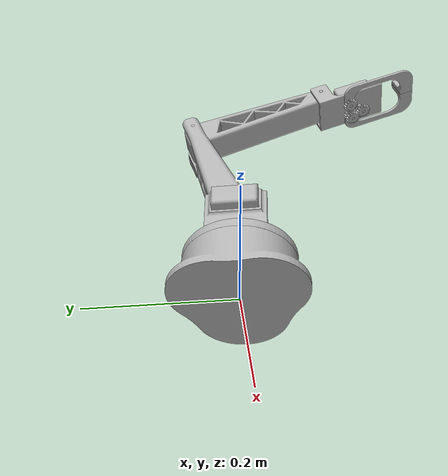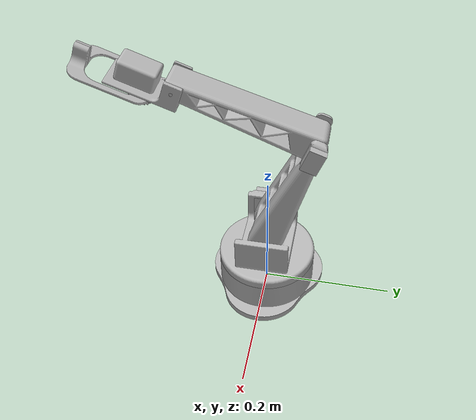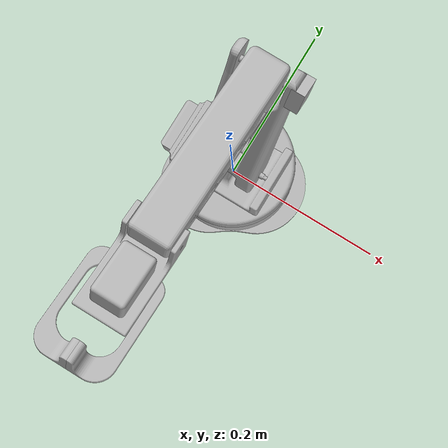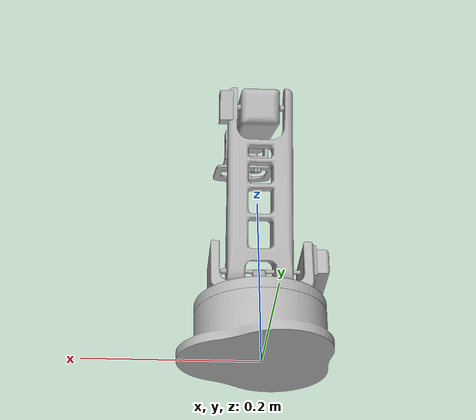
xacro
<?xml version="1.0" ?>
<robot name="FusionComponent" xmlns:xacro="http://www.ros.org/wiki/xacro">

<xacro:include filename="$(find FusionComponent_description)/urdf/materials.xacro" />
<xacro:include filename="$(find FusionComponent_description)/urdf/FusionComponent.trans" />
<xacro:include filename="$(find FusionComponent_description)/urdf/FusionComponent.gazebo" />
<link name="base_link">
  <inertial>
    <origin xyz="0.0002627923567015669 2.5914624485085075e-17 0.01494497720380998" rpy="0 0 0"/>
    <mass value="2.755020977836889"/>
    <inertia ixx="0.006659" iyy="0.00667" izz="0.011804" ixy="0.0" iyz="-0.0" ixz="7e-06"/>
  </inertial>
  <visual>
    <origin xyz="0 0 0" rpy="0 0 0"/>
    <geometry>
      <mesh filename="package://FusionComponent_description/meshes/base_link.stl" scale="0.001 0.001 0.001"/>
    </geometry>
    <material name="silver"/>
  </visual>
  <collision>
    <origin xyz="0 0 0" rpy="0 0 0"/>
    <geometry>
      <mesh filename="package://FusionComponent_description/meshes/base_link.stl" scale="0.001 0.001 0.001"/>
    </geometry>
  </collision>
</link>

<link name="base_motor_1">
  <inertial>
    <origin xyz="2.1099378127101763e-14 8.342972766746446e-18 0.017817002881844388" rpy="0 0 0"/>
    <mass value="4.278770654372955"/>
    <inertia ixx="0.005653" iyy="0.005653" izz="0.010365" ixy="0.0" iyz="0.0" ixz="0.0"/>
  </inertial>
  <visual>
    <origin xyz="-0.0 -0.0 -0.01" rpy="0 0 0"/>
    <geometry>
      <mesh filename="package://FusionComponent_description/meshes/base_motor_1.stl" scale="0.001 0.001 0.001"/>
    </geometry>
    <material name="silver"/>
  </visual>
  <collision>
    <origin xyz="-0.0 -0.0 -0.01" rpy="0 0 0"/>
    <geometry>
      <mesh filename="package://FusionComponent_description/meshes/base_motor_1.stl" scale="0.001 0.001 0.001"/>
    </geometry>
  </collision>
</link>

<link name="top_base_rotator_1">
  <inertial>
    <origin xyz="-8.89239995512236e-15 1.233342573525986e-17 0.0005047833356153636" rpy="0 0 0"/>
    <mass value="1.4471918755926776"/>
    <inertia ixx="0.002148" iyy="0.002148" izz="0.004265" ixy="0.0" iyz="-0.0" ixz="-0.0"/>
  </inertial>
  <visual>
    <origin xyz="-0.0 -0.0 -0.065" rpy="0 0 0"/>
    <geometry>
      <mesh filename="package://FusionComponent_description/meshes/top_base_rotator_1.stl" scale="0.001 0.001 0.001"/>
    </geometry>
    <material name="silver"/>
  </visual>
  <collision>
    <origin xyz="-0.0 -0.0 -0.065" rpy="0 0 0"/>
    <geometry>
      <mesh filename="package://FusionComponent_description/meshes/top_base_rotator_1.stl" scale="0.001 0.001 0.001"/>
    </geometry>
  </collision>
</link>

<link name="hand_base_rotator_1">
  <inertial>
    <origin xyz="0.004167289343908664 -1.646938891723545e-07 0.01738008984968477" rpy="0 0 0"/>
    <mass value="1.3327073869001724"/>
    <inertia ixx="0.001072" iyy="0.002557" izz="0.002882" ixy="-0.0" iyz="0.0" ixz="-0.00013"/>
  </inertial>
  <visual>
    <origin xyz="0.0 -0.0 -0.071" rpy="0 0 0"/>
    <geometry>
      <mesh filename="package://FusionComponent_description/meshes/hand_base_rotator_1.stl" scale="0.001 0.001 0.001"/>
    </geometry>
    <material name="silver"/>
  </visual>
  <collision>
    <origin xyz="0.0 -0.0 -0.071" rpy="0 0 0"/>
    <geometry>
      <mesh filename="package://FusionComponent_description/meshes/hand_base_rotator_1.stl" scale="0.001 0.001 0.001"/>
    </geometry>
  </collision>
</link>

<link name="shoulder_motor_1">
  <inertial>
    <origin xyz="-0.014796620520600927 -9.619743949770133e-16 0.015000000000000027" rpy="0 0 0"/>
    <mass value="0.4151541373103438"/>
    <inertia ixx="0.000155" iyy="6.1e-05" izz="0.000154" ixy="0.0" iyz="0.0" ixz="-0.0"/>
  </inertial>
  <visual>
    <origin xyz="0.0475 -0.0 -0.096" rpy="0 0 0"/>
    <geometry>
      <mesh filename="package://FusionComponent_description/meshes/shoulder_motor_1.stl" scale="0.001 0.001 0.001"/>
    </geometry>
    <material name="silver"/>
  </visual>
  <collision>
    <origin xyz="0.0475 -0.0 -0.096" rpy="0 0 0"/>
    <geometry>
      <mesh filename="package://FusionComponent_description/meshes/shoulder_motor_1.stl" scale="0.001 0.001 0.001"/>
    </geometry>
  </collision>
</link>

<link name="shoulder_motor_axel_1">
  <inertial>
    <origin xyz="0.05677700348432111 1.6219031117106984e-13 2.7755575615628914e-17" rpy="0 0 0"/>
    <mass value="0.01769462792226326"/>
    <inertia ixx="0.0" iyy="1.8e-05" izz="1.8e-05" ixy="-0.0" iyz="-0.0" ixz="0.0"/>
  </inertial>
  <visual>
    <origin xyz="0.0575 -0.0 -0.111" rpy="0 0 0"/>
    <geometry>
      <mesh filename="package://FusionComponent_description/meshes/shoulder_motor_axel_1.stl" scale="0.001 0.001 0.001"/>
    </geometry>
    <material name="silver"/>
  </visual>
  <collision>
    <origin xyz="0.0575 -0.0 -0.111" rpy="0 0 0"/>
    <geometry>
      <mesh filename="package://FusionComponent_description/meshes/shoulder_motor_axel_1.stl" scale="0.001 0.001 0.001"/>
    </geometry>
  </collision>
</link>

<link name="shoulder_1">
  <inertial>
    <origin xyz="-0.037761990101366584 0.023404113233626452 0.06425680378421765" rpy="0 0 0"/>
    <mass value="3.0233564641488204"/>
    <inertia ixx="0.009655" iyy="0.010195" izz="0.003428" ixy="3.4e-05" iyz="-0.002827" ixz="9.3e-05"/>
  </inertial>
  <visual>
    <origin xyz="-0.0375 -0.0 -0.111" rpy="0 0 0"/>
    <geometry>
      <mesh filename="package://FusionComponent_description/meshes/shoulder_1.stl" scale="0.001 0.001 0.001"/>
    </geometry>
    <material name="silver"/>
  </visual>
  <collision>
    <origin xyz="-0.0375 -0.0 -0.111" rpy="0 0 0"/>
    <geometry>
      <mesh filename="package://FusionComponent_description/meshes/shoulder_1.stl" scale="0.001 0.001 0.001"/>
    </geometry>
  </collision>
</link>

<link name="elbow_motor_1">
  <inertial>
    <origin xyz="0.002817746786057923 -3.458954375978873e-07 4.573828299436755e-07" rpy="0 0 0"/>
    <mass value="0.11057441596987796"/>
    <inertia ixx="1.5e-05" iyy="3.6e-05" izz="3.2e-05" ixy="-0.0" iyz="-2e-06" ixz="0.0"/>
  </inertial>
  <visual>
    <origin xyz="-0.0325 -0.065644 -0.291354" rpy="0 0 0"/>
    <geometry>
      <mesh filename="package://FusionComponent_description/meshes/elbow_motor_1.stl" scale="0.001 0.001 0.001"/>
    </geometry>
    <material name="silver"/>
  </visual>
  <collision>
    <origin xyz="-0.0325 -0.065644 -0.291354" rpy="0 0 0"/>
    <geometry>
      <mesh filename="package://FusionComponent_description/meshes/elbow_motor_1.stl" scale="0.001 0.001 0.001"/>
    </geometry>
  </collision>
</link>

<link name="elbow_1">
  <inertial>
    <origin xyz="-3.186842774909844e-17 -0.08026769593455063 0.02931228483296111" rpy="0 0 0"/>
    <mass value="1.9602761020990533"/>
    <inertia ixx="0.009229" iyy="0.001586" izz="0.008272" ixy="0.0" iyz="0.00278" ixz="0.0"/>
  </inertial>
  <visual>
    <origin xyz="0.0 -0.065644 -0.291354" rpy="0 0 0"/>
    <geometry>
      <mesh filename="package://FusionComponent_description/meshes/elbow_1.stl" scale="0.001 0.001 0.001"/>
    </geometry>
    <material name="silver"/>
  </visual>
  <collision>
    <origin xyz="0.0 -0.065644 -0.291354" rpy="0 0 0"/>
    <geometry>
      <mesh filename="package://FusionComponent_description/meshes/elbow_1.stl" scale="0.001 0.001 0.001"/>
    </geometry>
  </collision>
</link>

<link name="wrist_motor_1">
  <inertial>
    <origin xyz="1.02763260686367e-05 -2.4618594599012944e-07 -8.266686030156123e-08" rpy="0 0 0"/>
    <mass value="0.06394167395834383"/>
    <inertia ixx="2e-06" iyy="1.2e-05" izz="1.2e-05" ixy="-0.0" iyz="0.0" ixz="0.0"/>
  </inertial>
  <visual>
    <origin xyz="0.0 0.121543 -0.359485" rpy="0 0 0"/>
    <geometry>
      <mesh filename="package://FusionComponent_description/meshes/wrist_motor_1.stl" scale="0.001 0.001 0.001"/>
    </geometry>
    <material name="silver"/>
  </visual>
  <collision>
    <origin xyz="0.0 0.121543 -0.359485" rpy="0 0 0"/>
    <geometry>
      <mesh filename="package://FusionComponent_description/meshes/wrist_motor_1.stl" scale="0.001 0.001 0.001"/>
    </geometry>
  </collision>
</link>

<link name="wrist_1">
  <inertial>
    <origin xyz="-0.027457354413848726 -0.03110054685056947 -0.007400943537732962" rpy="0 0 0"/>
    <mass value="0.23483281660747538"/>
    <inertia ixx="0.000231" iyy="0.000107" izz="0.000291" ixy="-0.0" iyz="3.5e-05" ixz="-0.0"/>
  </inertial>
  <visual>
    <origin xyz="-0.0275 0.121543 -0.359485" rpy="0 0 0"/>
    <geometry>
      <mesh filename="package://FusionComponent_description/meshes/wrist_1.stl" scale="0.001 0.001 0.001"/>
    </geometry>
    <material name="silver"/>
  </visual>
  <collision>
    <origin xyz="-0.0275 0.121543 -0.359485" rpy="0 0 0"/>
    <geometry>
      <mesh filename="package://FusionComponent_description/meshes/wrist_1.stl" scale="0.001 0.001 0.001"/>
    </geometry>
  </collision>
</link>

<link name="palm_motor_1">
  <inertial>
    <origin xyz="1.826033312537553e-15 0.00507097080317323 0.013930869917469224" rpy="0 0 0"/>
    <mass value="0.4404700916877822"/>
    <inertia ixx="0.000139" iyy="8.5e-05" izz="0.00014" ixy="0.0" iyz="2.3e-05" ixz="0.0"/>
  </inertial>
  <visual>
    <origin xyz="-0.0 0.175617 -0.35711" rpy="0 0 0"/>
    <geometry>
      <mesh filename="package://FusionComponent_description/meshes/palm_motor_1.stl" scale="0.001 0.001 0.001"/>
    </geometry>
    <material name="silver"/>
  </visual>
  <collision>
    <origin xyz="-0.0 0.175617 -0.35711" rpy="0 0 0"/>
    <geometry>
      <mesh filename="package://FusionComponent_description/meshes/palm_motor_1.stl" scale="0.001 0.001 0.001"/>
    </geometry>
  </collision>
</link>

<link name="palm_motor_gear_1">
  <inertial>
    <origin xyz="-4.259462957023714e-05 0.0008109731211291826 0.0023653669883929584" rpy="0 0 0"/>
    <mass value="0.00866182061207498"/>
    <inertia ixx="0.0" iyy="0.0" izz="0.0" ixy="0.0" iyz="0.0" ixz="-0.0"/>
  </inertial>
  <visual>
    <origin xyz="-0.0 0.182457 -0.338316" rpy="0 0 0"/>
    <geometry>
      <mesh filename="package://FusionComponent_description/meshes/palm_motor_gear_1.stl" scale="0.001 0.001 0.001"/>
    </geometry>
    <material name="silver"/>
  </visual>
  <collision>
    <origin xyz="-0.0 0.182457 -0.338316" rpy="0 0 0"/>
    <geometry>
      <mesh filename="package://FusionComponent_description/meshes/palm_motor_gear_1.stl" scale="0.001 0.001 0.001"/>
    </geometry>
  </collision>
</link>

<link name="left_finger_bottom_gear_1">
  <inertial>
    <origin xyz="-4.4721728088877553e-05 0.0008136000135096078 0.002364258405125108" rpy="0 0 0"/>
    <mass value="0.008661818381366324"/>
    <inertia ixx="0.0" iyy="0.0" izz="0.0" ixy="0.0" iyz="0.0" ixz="-0.0"/>
  </inertial>
  <visual>
    <origin xyz="-0.006317 0.16669 -0.332043" rpy="0 0 0"/>
    <geometry>
      <mesh filename="package://FusionComponent_description/meshes/left_finger_bottom_gear_1.stl" scale="0.001 0.001 0.001"/>
    </geometry>
    <material name="silver"/>
  </visual>
  <collision>
    <origin xyz="-0.006317 0.16669 -0.332043" rpy="0 0 0"/>
    <geometry>
      <mesh filename="package://FusionComponent_description/meshes/left_finger_bottom_gear_1.stl" scale="0.001 0.001 0.001"/>
    </geometry>
  </collision>
</link>

<link name="right_finger_bottom_gear_1">
  <inertial>
    <origin xyz="-5.064487783260942e-05 0.0008184765904432623 0.002362613257196833" rpy="0 0 0"/>
    <mass value="0.008662439026421578"/>
    <inertia ixx="0.0" iyy="0.0" izz="0.0" ixy="0.0" iyz="0.0" ixz="-0.0"/>
  </inertial>
  <visual>
    <origin xyz="0.011683 0.164295 -0.33862" rpy="0 0 0"/>
    <geometry>
      <mesh filename="package://FusionComponent_description/meshes/right_finger_bottom_gear_1.stl" scale="0.001 0.001 0.001"/>
    </geometry>
    <material name="silver"/>
  </visual>
  <collision>
    <origin xyz="0.011683 0.164295 -0.33862" rpy="0 0 0"/>
    <geometry>
      <mesh filename="package://FusionComponent_description/meshes/right_finger_bottom_gear_1.stl" scale="0.001 0.001 0.001"/>
    </geometry>
  </collision>
</link>

<link name="left_finger_top_gear_1">
  <inertial>
    <origin xyz="-4.479059113253903e-05 0.0008123912802939781 0.0023647996557659146" rpy="0 0 0"/>
    <mass value="0.008662555217009283"/>
    <inertia ixx="0.0" iyy="0.0" izz="0.0" ixy="-0.0" iyz="0.0" ixz="-0.0"/>
  </inertial>
  <visual>
    <origin xyz="-0.006317 0.164295 -0.33862" rpy="0 0 0"/>
    <geometry>
      <mesh filename="package://FusionComponent_description/meshes/left_finger_top_gear_1.stl" scale="0.001 0.001 0.001"/>
    </geometry>
    <material name="silver"/>
  </visual>
  <collision>
    <origin xyz="-0.006317 0.164295 -0.33862" rpy="0 0 0"/>
    <geometry>
      <mesh filename="package://FusionComponent_description/meshes/left_finger_top_gear_1.stl" scale="0.001 0.001 0.001"/>
    </geometry>
  </collision>
</link>

<link name="left_finger_1">
  <inertial>
    <origin xyz="0.009906058571550292 -0.05856961975045902 0.02823125529581383" rpy="0 0 0"/>
    <mass value="0.08984932846007516"/>
    <inertia ixx="0.000128" iyy="4e-05" izz="0.000115" ixy="-1.5e-05" iyz="4.6e-05" ixz="1.1e-05"/>
  </inertial>
  <visual>
    <origin xyz="-0.006317 0.162585 -0.343319" rpy="0 0 0"/>
    <geometry>
      <mesh filename="package://FusionComponent_description/meshes/left_finger_1.stl" scale="0.001 0.001 0.001"/>
    </geometry>
    <material name="silver"/>
  </visual>
  <collision>
    <origin xyz="-0.006317 0.162585 -0.343319" rpy="0 0 0"/>
    <geometry>
      <mesh filename="package://FusionComponent_description/meshes/left_finger_1.stl" scale="0.001 0.001 0.001"/>
    </geometry>
  </collision>
</link>

<link name="right_finger_1">
  <inertial>
    <origin xyz="-0.00747474095874103 -0.059555240538888304 0.028419287174806906" rpy="0 0 0"/>
    <mass value="0.0931576119298089"/>
    <inertia ixx="0.000131" iyy="4.5e-05" izz="0.000123" ixy="2.1e-05" iyz="4.7e-05" ixz="-1.4e-05"/>
  </inertial>
  <visual>
    <origin xyz="0.011683 0.162585 -0.343319" rpy="0 0 0"/>
    <geometry>
      <mesh filename="package://FusionComponent_description/meshes/right_finger_1.stl" scale="0.001 0.001 0.001"/>
    </geometry>
    <material name="silver"/>
  </visual>
  <collision>
    <origin xyz="0.011683 0.162585 -0.343319" rpy="0 0 0"/>
    <geometry>
      <mesh filename="package://FusionComponent_description/meshes/right_finger_1.stl" scale="0.001 0.001 0.001"/>
    </geometry>
  </collision>
</link>

<link name="right_finger_gear_axel_1">
  <inertial>
    <origin xyz="-2.5024189561489996e-07 -0.002308966524115219 -0.006343680017547371" rpy="0 0 0"/>
    <mass value="0.002081122528065531"/>
    <inertia ixx="0.0" iyy="0.0" izz="0.0" ixy="0.0" iyz="-0.0" ixz="-0.0"/>
  </inertial>
  <visual>
    <origin xyz="0.011683 0.159677 -0.351308" rpy="0 0 0"/>
    <geometry>
      <mesh filename="package://FusionComponent_description/meshes/right_finger_gear_axel_1.stl" scale="0.001 0.001 0.001"/>
    </geometry>
    <material name="silver"/>
  </visual>
  <collision>
    <origin xyz="0.011683 0.159677 -0.351308" rpy="0 0 0"/>
    <geometry>
      <mesh filename="package://FusionComponent_description/meshes/right_finger_gear_axel_1.stl" scale="0.001 0.001 0.001"/>
    </geometry>
  </collision>
</link>

<link name="left_finger_gear_axel_1">
  <inertial>
    <origin xyz="-2.5024174616933986e-07 -0.0035659144225341777 -0.009796993433354495" rpy="0 0 0"/>
    <mass value="0.003295701517901636"/>
    <inertia ixx="0.0" iyy="0.0" izz="0.0" ixy="0.0" iyz="-0.0" ixz="-0.0"/>
  </inertial>
  <visual>
    <origin xyz="-0.006317 0.159677 -0.351308" rpy="0 0 0"/>
    <geometry>
      <mesh filename="package://FusionComponent_description/meshes/left_finger_gear_axel_1.stl" scale="0.001 0.001 0.001"/>
    </geometry>
    <material name="silver"/>
  </visual>
  <collision>
    <origin xyz="-0.006317 0.159677 -0.351308" rpy="0 0 0"/>
    <geometry>
      <mesh filename="package://FusionComponent_description/meshes/left_finger_gear_axel_1.stl" scale="0.001 0.001 0.001"/>
    </geometry>
  </collision>
</link>

<joint name="base_motor_joint" type="fixed">
  <origin xyz="0.0 0.0 0.01" rpy="0 0 0"/>
  <parent link="base_link"/>
  <child link="base_motor_1"/>
</joint>

<joint name="top_base_rotator_joint" type="continuous">
  <origin xyz="0.0 0.0 0.055" rpy="0 0 0"/>
  <parent link="base_motor_1"/>
  <child link="top_base_rotator_1"/>
  <axis xyz="0.0 0.0 1.0"/>
</joint>

<joint name="hand_base_rotator_joint" type="fixed">
  <origin xyz="-0.0 0.0 0.006" rpy="0 0 0"/>
  <parent link="top_base_rotator_1"/>
  <child link="hand_base_rotator_1"/>
</joint>

<joint name="shoulder_motor_joint" type="fixed">
  <origin xyz="-0.0475 0.0 0.025" rpy="0 0 0"/>
  <parent link="hand_base_rotator_1"/>
  <child link="shoulder_motor_1"/>
</joint>

<joint name="shoulder_motor_axel_joint" type="revolute">
  <origin xyz="-0.01 0.0 0.015" rpy="0 0 0"/>
  <parent link="shoulder_motor_1"/>
  <child link="shoulder_motor_axel_1"/>
  <axis xyz="-1.0 0.0 0.0"/>
  <limit upper="1.919862" lower="-1.22173" effort="100" velocity="100"/>
</joint>

<joint name="shoulder_joint" type="fixed">
  <origin xyz="0.095 0.0 0.0" rpy="0 0 0"/>
  <parent link="shoulder_motor_axel_1"/>
  <child link="shoulder_1"/>
</joint>

<joint name="elbow_motor_joint" type="fixed">
  <origin xyz="-0.005 0.065644 0.180354" rpy="0 0 0"/>
  <parent link="shoulder_1"/>
  <child link="elbow_motor_1"/>
</joint>

<joint name="elbow_joint" type="revolute">
  <origin xyz="-0.0325 0.0 0.0" rpy="0 0 0"/>
  <parent link="elbow_motor_1"/>
  <child link="elbow_1"/>
  <axis xyz="-1.0 0.0 0.0"/>
  <limit upper="3.490659" lower="-0.523599" effort="100" velocity="100"/>
</joint>

<joint name="wrist_motor_joint" type="fixed">
  <origin xyz="0.0 -0.187187 0.068131" rpy="0 0 0"/>
  <parent link="elbow_1"/>
  <child link="wrist_motor_1"/>
</joint>

<joint name="wrist_joint" type="revolute">
  <origin xyz="0.0275 0.0 0.0" rpy="0 0 0"/>
  <parent link="wrist_motor_1"/>
  <child link="wrist_1"/>
  <axis xyz="1.0 0.0 0.0"/>
  <limit upper="0.174533" lower="-0.174533" effort="100" velocity="100"/>
</joint>

<joint name="palm_motor_joint" type="fixed">
  <origin xyz="-0.0275 -0.054074 -0.002375" rpy="0 0 0"/>
  <parent link="wrist_1"/>
  <child link="palm_motor_1"/>
</joint>

<joint name="palm_motor_gear_joint" type="revolute">
  <origin xyz="0.0 -0.00684 -0.018794" rpy="0 0 0"/>
  <parent link="palm_motor_1"/>
  <child link="palm_motor_gear_1"/>
  <axis xyz="0.0 -0.342031 -0.939689"/>
  <limit upper="2.792527" lower="0.0" effort="100" velocity="100"/>
</joint>

<joint name="left_finger_bottom_gear_joint" type="revolute">
  <origin xyz="0.0 -0.007013 -0.019265" rpy="0 0 0"/>
  <parent link="left_finger_gear_axel_1"/>
  <child link="left_finger_bottom_gear_1"/>
  <axis xyz="0.0 -0.342031 -0.939689"/>
  <limit upper="2.792527" lower="0.0" effort="100" velocity="100"/>
</joint>

<joint name="right_finger_bottom_gear_joint" type="revolute">
  <origin xyz="0.0 -0.004618 -0.012688" rpy="0 0 0"/>
  <parent link="right_finger_gear_axel_1"/>
  <child link="right_finger_bottom_gear_1"/>
  <axis xyz="-0.0 -0.342031 -0.939689"/>
  <limit upper="2.792527" lower="0.0" effort="100" velocity="100"/>
</joint>

<joint name="left_finger_top_gear_joint" type="revolute">
  <origin xyz="0.0 -0.004618 -0.012688" rpy="0 0 0"/>
  <parent link="left_finger_gear_axel_1"/>
  <child link="left_finger_top_gear_1"/>
  <axis xyz="-0.0 0.342031 0.939689"/>
  <limit upper="2.792527" lower="0.0" effort="100" velocity="100"/>
</joint>

<joint name="left_finger_joint" type="fixed">
  <origin xyz="0.0 0.00171 0.004699" rpy="0 0 0"/>
  <parent link="left_finger_top_gear_1"/>
  <child link="left_finger_1"/>
</joint>

<joint name="right_finger_joint" type="fixed">
  <origin xyz="0.0 0.00171 0.004699" rpy="0 0 0"/>
  <parent link="right_finger_bottom_gear_1"/>
  <child link="right_finger_1"/>
</joint>

<joint name="right_finger_gear_axel_joint" type="fixed">
  <origin xyz="-0.039183 -0.038134 -0.008177" rpy="0 0 0"/>
  <parent link="wrist_1"/>
  <child link="right_finger_gear_axel_1"/>
</joint>

<joint name="left_finger_gear_axel_joint" type="fixed">
  <origin xyz="-0.021183 -0.038134 -0.008177" rpy="0 0 0"/>
  <parent link="wrist_1"/>
  <child link="left_finger_gear_axel_1"/>
</joint>

</robot>

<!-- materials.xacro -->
<robot name="FusionComponent" xmlns:xacro="http://www.ros.org/wiki/xacro" >

<material name="silver">
  <color rgba="0.700 0.700 0.700 1.000"/>
</material>

</robot>

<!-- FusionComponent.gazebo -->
<robot name="FusionComponent" xmlns:xacro="http://www.ros.org/wiki/xacro" >

<xacro:property name="body_color" value="Gazebo/Silver" />

<gazebo>
  <plugin name="control" filename="libgazebo_ros_control.so"/>
</gazebo>
<gazebo reference="base_link">
  <material>${body_color}</material>
  <mu1>0.2</mu1>
  <mu2>0.2</mu2>
  <selfCollide>true</selfCollide>
  <gravity>true</gravity>
</gazebo>

<gazebo reference="base_motor_1">
  <material>${body_color}</material>
  <mu1>0.2</mu1>
  <mu2>0.2</mu2>
  <selfCollide>true</selfCollide>
</gazebo>

<gazebo reference="top_base_rotator_1">
  <material>${body_color}</material>
  <mu1>0.2</mu1>
  <mu2>0.2</mu2>
  <selfCollide>true</selfCollide>
</gazebo>

<gazebo reference="hand_base_rotator_1">
  <material>${body_color}</material>
  <mu1>0.2</mu1>
  <mu2>0.2</mu2>
  <selfCollide>true</selfCollide>
</gazebo>

<gazebo reference="shoulder_motor_1">
  <material>${body_color}</material>
  <mu1>0.2</mu1>
  <mu2>0.2</mu2>
  <selfCollide>true</selfCollide>
</gazebo>

<gazebo reference="shoulder_motor_axel_1">
  <material>${body_color}</material>
  <mu1>0.2</mu1>
  <mu2>0.2</mu2>
  <selfCollide>true</selfCollide>
</gazebo>

<gazebo reference="shoulder_1">
  <material>${body_color}</material>
  <mu1>0.2</mu1>
  <mu2>0.2</mu2>
  <selfCollide>true</selfCollide>
</gazebo>

<gazebo reference="elbow_motor_1">
  <material>${body_color}</material>
  <mu1>0.2</mu1>
  <mu2>0.2</mu2>
  <selfCollide>true</selfCollide>
</gazebo>

<gazebo reference="elbow_1">
  <material>${body_color}</material>
  <mu1>0.2</mu1>
  <mu2>0.2</mu2>
  <selfCollide>true</selfCollide>
</gazebo>

<gazebo reference="wrist_motor_1">
  <material>${body_color}</material>
  <mu1>0.2</mu1>
  <mu2>0.2</mu2>
  <selfCollide>true</selfCollide>
</gazebo>

<gazebo reference="wrist_1">
  <material>${body_color}</material>
  <mu1>0.2</mu1>
  <mu2>0.2</mu2>
  <selfCollide>true</selfCollide>
</gazebo>

<gazebo reference="palm_motor_1">
  <material>${body_color}</material>
  <mu1>0.2</mu1>
  <mu2>0.2</mu2>
  <selfCollide>true</selfCollide>
</gazebo>

<gazebo reference="palm_motor_gear_1">
  <material>${body_color}</material>
  <mu1>0.2</mu1>
  <mu2>0.2</mu2>
  <selfCollide>true</selfCollide>
</gazebo>

<gazebo reference="left_finger_bottom_gear_1">
  <material>${body_color}</material>
  <mu1>0.2</mu1>
  <mu2>0.2</mu2>
  <selfCollide>true</selfCollide>
</gazebo>

<gazebo reference="right_finger_bottom_gear_1">
  <material>${body_color}</material>
  <mu1>0.2</mu1>
  <mu2>0.2</mu2>
  <selfCollide>true</selfCollide>
</gazebo>

<gazebo reference="left_finger_top_gear_1">
  <material>${body_color}</material>
  <mu1>0.2</mu1>
  <mu2>0.2</mu2>
  <selfCollide>true</selfCollide>
</gazebo>

<gazebo reference="left_finger_1">
  <material>${body_color}</material>
  <mu1>0.2</mu1>
  <mu2>0.2</mu2>
  <selfCollide>true</selfCollide>
</gazebo>

<gazebo reference="right_finger_1">
  <material>${body_color}</material>
  <mu1>0.2</mu1>
  <mu2>0.2</mu2>
  <selfCollide>true</selfCollide>
</gazebo>

<gazebo reference="right_finger_gear_axel_1">
  <material>${body_color}</material>
  <mu1>0.2</mu1>
  <mu2>0.2</mu2>
  <selfCollide>true</selfCollide>
</gazebo>

<gazebo reference="left_finger_gear_axel_1">
  <material>${body_color}</material>
  <mu1>0.2</mu1>
  <mu2>0.2</mu2>
  <selfCollide>true</selfCollide>
</gazebo>

</robot>
